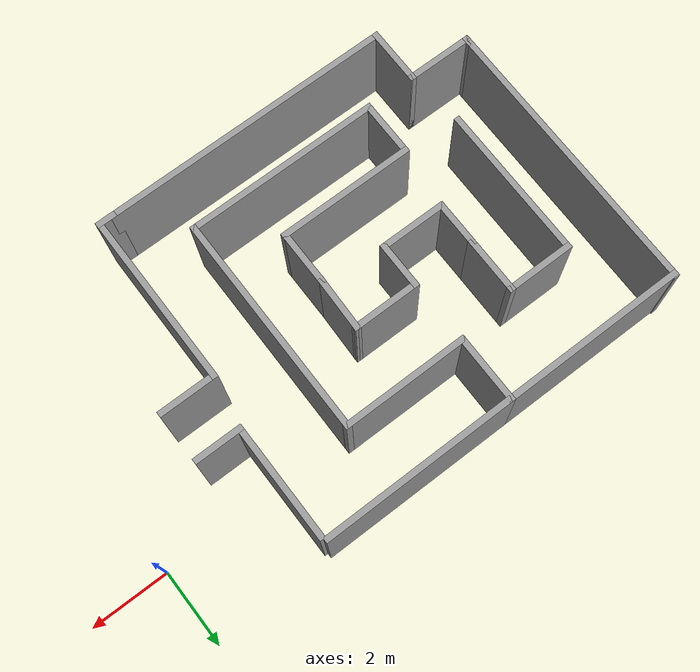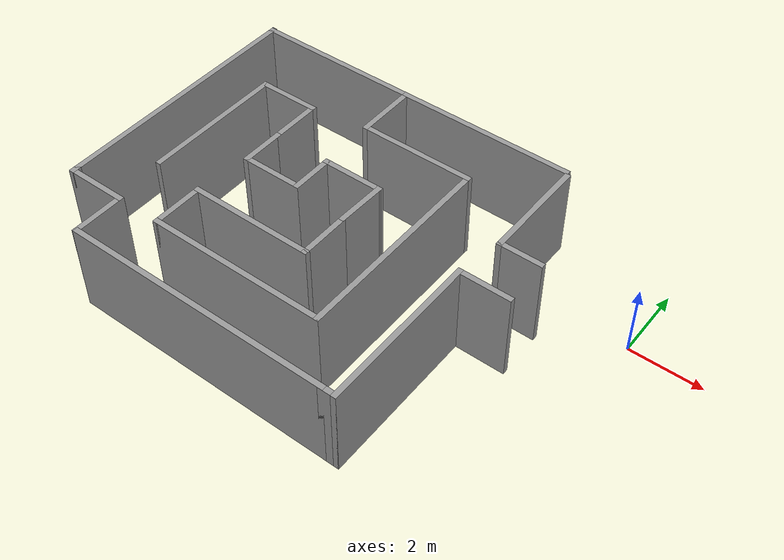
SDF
<?xml version='1.0'?>
<sdf version='1.7'>
  <model name='Hard_map.world'>
    <pose>-6.34769 -2.39173 0 0 -0 0</pose>
    <link name='Wall_20'>
      <collision name='Wall_20_Collision'>
        <geometry>
          <box>
            <size>1.75 0.15 2.5</size>
          </box>
        </geometry>
        <pose>0 0 1.25 0 -0 0</pose>
      </collision>
      <visual name='Wall_20_Visual'>
        <pose>0 0 1.25 0 -0 0</pose>
        <geometry>
          <box>
            <size>1.75 0.15 2.5</size>
          </box>
        </geometry>
        <material>
          <script>
            <uri>file://media/materials/scripts/gazebo.material</uri>
            <name>Gazebo/Grey</name>
          </script>
          <ambient>1 1 1 1</ambient>
        </material>
        <meta>
          <layer>0</layer>
        </meta>
      </visual>
      <pose>-0.837705 1.03457 0 0 -0 3.14159</pose>
    </link>
    <link name='Wall_21'>
      <collision name='Wall_21_Collision'>
        <geometry>
          <box>
            <size>1.25 0.15 2.5</size>
          </box>
        </geometry>
        <pose>0 0 1.25 0 -0 0</pose>
      </collision>
      <visual name='Wall_21_Visual'>
        <pose>0 0 1.25 0 -0 0</pose>
        <geometry>
          <box>
            <size>1.25 0.15 2.5</size>
          </box>
        </geometry>
        <material>
          <script>
            <uri>file://media/materials/scripts/gazebo.material</uri>
            <name>Gazebo/Grey</name>
          </script>
          <ambient>1 1 1 1</ambient>
        </material>
        <meta>
          <layer>0</layer>
        </meta>
      </visual>
      <pose>-1.6377 0.484568 0 0 -0 -1.5708</pose>
    </link>
    <link name='Wall_22'>
      <collision name='Wall_22_Collision'>
        <geometry>
          <box>
            <size>1.75 0.15 2.5</size>
          </box>
        </geometry>
        <pose>0 0 1.25 0 -0 0</pose>
      </collision>
      <visual name='Wall_22_Visual'>
        <pose>0 0 1.25 0 -0 0</pose>
        <geometry>
          <box>
            <size>1.75 0.15 2.5</size>
          </box>
        </geometry>
        <material>
          <script>
            <uri>file://media/materials/scripts/gazebo.material</uri>
            <name>Gazebo/Grey</name>
          </script>
          <ambient>1 1 1 1</ambient>
        </material>
        <meta>
          <layer>0</layer>
        </meta>
      </visual>
      <pose>-2.43771 -0.065432 0 0 -0 3.14159</pose>
    </link>
    <link name='Wall_23'>
      <collision name='Wall_23_Collision'>
        <geometry>
          <box>
            <size>1.25 0.15 2.5</size>
          </box>
        </geometry>
        <pose>0 0 1.25 0 -0 0</pose>
      </collision>
      <visual name='Wall_23_Visual'>
        <pose>0 0 1.25 0 -0 0</pose>
        <geometry>
          <box>
            <size>1.25 0.15 2.5</size>
          </box>
        </geometry>
        <material>
          <script>
            <uri>file://media/materials/scripts/gazebo.material</uri>
            <name>Gazebo/Grey</name>
          </script>
          <ambient>1 1 1 1</ambient>
        </material>
        <meta>
          <layer>0</layer>
        </meta>
      </visual>
      <pose>-3.23771 0.484568 0 0 -0 1.5708</pose>
    </link>
    <link name='Wall_24'>
      <collision name='Wall_24_Collision'>
        <geometry>
          <box>
            <size>1.5 0.15 2.5</size>
          </box>
        </geometry>
        <pose>0 0 1.25 0 -0 0</pose>
      </collision>
      <visual name='Wall_24_Visual'>
        <pose>0 0 1.25 0 -0 0</pose>
        <geometry>
          <box>
            <size>1.5 0.15 2.5</size>
          </box>
        </geometry>
        <material>
          <script>
            <uri>file://media/materials/scripts/gazebo.material</uri>
            <name>Gazebo/Grey</name>
          </script>
          <ambient>1 1 1 1</ambient>
        </material>
        <meta>
          <layer>0</layer>
        </meta>
      </visual>
      <pose>-3.23771 1.70957 0 0 -0 1.5708</pose>
    </link>
    <link name='Wall_25'>
      <collision name='Wall_25_Collision'>
        <geometry>
          <box>
            <size>1.75 0.15 2.5</size>
          </box>
        </geometry>
        <pose>0 0 1.25 0 -0 0</pose>
      </collision>
      <visual name='Wall_25_Visual'>
        <pose>0 0 1.25 0 -0 0</pose>
        <geometry>
          <box>
            <size>1.75 0.15 2.5</size>
          </box>
        </geometry>
        <material>
          <script>
            <uri>file://media/materials/scripts/gazebo.material</uri>
            <name>Gazebo/Grey</name>
          </script>
          <ambient>1 1 1 1</ambient>
        </material>
        <meta>
          <layer>0</layer>
        </meta>
      </visual>
      <pose>-4.0377 2.38457 0 0 -0 3.14159</pose>
    </link>
    <link name='Wall_26'>
      <collision name='Wall_26_Collision'>
        <geometry>
          <box>
            <size>4 0.15 2.5</size>
          </box>
        </geometry>
        <pose>0 0 1.25 0 -0 0</pose>
      </collision>
      <visual name='Wall_26_Visual'>
        <pose>0 0 1.25 0 -0 0</pose>
        <geometry>
          <box>
            <size>4 0.15 2.5</size>
          </box>
        </geometry>
        <material>
          <script>
            <uri>file://media/materials/scripts/gazebo.material</uri>
            <name>Gazebo/Grey</name>
          </script>
          <ambient>1 1 1 1</ambient>
        </material>
        <meta>
          <layer>0</layer>
        </meta>
      </visual>
      <pose>-4.8377 0.459568 0 0 -0 -1.5708</pose>
    </link>
    <link name='Wall_28'>
      <collision name='Wall_28_Collision'>
        <geometry>
          <box>
            <size>1.5 0.15 2.5</size>
          </box>
        </geometry>
        <pose>0 0 1.25 0 -0 0</pose>
      </collision>
      <visual name='Wall_28_Visual'>
        <pose>0 0 1.25 0 -0 0</pose>
        <geometry>
          <box>
            <size>1.5 0.15 2.5</size>
          </box>
        </geometry>
        <material>
          <script>
            <uri>file://media/materials/scripts/gazebo.material</uri>
            <name>Gazebo/Grey</name>
          </script>
          <ambient>1 1 1 1</ambient>
        </material>
        <meta>
          <layer>0</layer>
        </meta>
      </visual>
      <pose>-0.072685 -0.934696 0 0 -0 -1.5708</pose>
    </link>
    <link name='Wall_29'>
      <collision name='Wall_29_Collision'>
        <geometry>
          <box>
            <size>3.5 0.15 2.5</size>
          </box>
        </geometry>
        <pose>0 0 1.25 0 -0 0</pose>
      </collision>
      <visual name='Wall_29_Visual'>
        <pose>0 0 1.25 0 -0 0</pose>
        <geometry>
          <box>
            <size>3.5 0.15 2.5</size>
          </box>
        </geometry>
        <material>
          <script>
            <uri>file://media/materials/scripts/gazebo.material</uri>
            <name>Gazebo/Grey</name>
          </script>
          <ambient>1 1 1 1</ambient>
        </material>
        <meta>
          <layer>0</layer>
        </meta>
      </visual>
      <pose>-1.74768 -1.6097 0 0 -0 3.14159</pose>
    </link>
    <link name='Wall_30'>
      <collision name='Wall_30_Collision'>
        <geometry>
          <box>
            <size>1.5 0.15 2.5</size>
          </box>
        </geometry>
        <pose>0 0 1.25 0 -0 0</pose>
      </collision>
      <visual name='Wall_30_Visual'>
        <pose>0 0 1.25 0 -0 0</pose>
        <geometry>
          <box>
            <size>1.5 0.15 2.5</size>
          </box>
        </geometry>
        <material>
          <script>
            <uri>file://media/materials/scripts/gazebo.material</uri>
            <name>Gazebo/Grey</name>
          </script>
          <ambient>1 1 1 1</ambient>
        </material>
        <meta>
          <layer>0</layer>
        </meta>
      </visual>
      <pose>-3.42268 -2.2847 0 0 -0 -1.5708</pose>
    </link>
    <link name='Wall_31'>
      <collision name='Wall_31_Collision'>
        <geometry>
          <box>
            <size>5 0.15 2.5</size>
          </box>
        </geometry>
        <pose>0 0 1.25 0 -0 0</pose>
      </collision>
      <visual name='Wall_31_Visual'>
        <pose>0 0 1.25 0 -0 0</pose>
        <geometry>
          <box>
            <size>5 0.15 2.5</size>
          </box>
        </geometry>
        <material>
          <script>
            <uri>file://media/materials/scripts/gazebo.material</uri>
            <name>Gazebo/Grey</name>
          </script>
          <ambient>1 1 1 1</ambient>
        </material>
        <meta>
          <layer>0</layer>
        </meta>
      </visual>
      <pose>-0.997685 -2.9597 0 0 -0 0</pose>
    </link>
    <link name='Wall_32'>
      <collision name='Wall_32_Collision'>
        <geometry>
          <box>
            <size>5.75 0.15 2.5</size>
          </box>
        </geometry>
        <pose>0 0 1.25 0 -0 0</pose>
      </collision>
      <visual name='Wall_32_Visual'>
        <pose>0 0 1.25 0 -0 0</pose>
        <geometry>
          <box>
            <size>5.75 0.15 2.5</size>
          </box>
        </geometry>
        <material>
          <script>
            <uri>file://media/materials/scripts/gazebo.material</uri>
            <name>Gazebo/Grey</name>
          </script>
          <ambient>1 1 1 1</ambient>
        </material>
        <meta>
          <layer>0</layer>
        </meta>
      </visual>
      <pose>1.42731 -0.159696 0 0 -0 1.5708</pose>
    </link>
    <link name='Wall_33'>
      <collision name='Wall_33_Collision'>
        <geometry>
          <box>
            <size>3.25 0.15 2.5</size>
          </box>
        </geometry>
        <pose>0 0 1.25 0 -0 0</pose>
      </collision>
      <visual name='Wall_33_Visual'>
        <pose>0 0 1.25 0 -0 0</pose>
        <geometry>
          <box>
            <size>3.25 0.15 2.5</size>
          </box>
        </geometry>
        <material>
          <script>
            <uri>file://media/materials/scripts/gazebo.material</uri>
            <name>Gazebo/Grey</name>
          </script>
          <ambient>1 1 1 1</ambient>
        </material>
        <meta>
          <layer>0</layer>
        </meta>
      </visual>
      <pose>-0.122685 2.6403 0 0 -0 3.14159</pose>
    </link>
    <link name='Wall_34'>
      <collision name='Wall_34_Collision'>
        <geometry>
          <box>
            <size>1.79626 0.15 2.5</size>
          </box>
        </geometry>
        <pose>0 0 1.25 0 -0 0</pose>
      </collision>
      <visual name='Wall_34_Visual'>
        <pose>0 0 1.25 0 -0 0</pose>
        <geometry>
          <box>
            <size>1.79626 0.15 2.5</size>
          </box>
        </geometry>
        <material>
          <script>
            <uri>file://media/materials/scripts/gazebo.material</uri>
            <name>Gazebo/Grey</name>
          </script>
          <ambient>1 1 1 1</ambient>
        </material>
        <meta>
          <layer>0</layer>
        </meta>
      </visual>
      <pose>-1.67268 3.46343 0 0 -0 1.5708</pose>
    </link>
    <link name='Wall_35'>
      <collision name='Wall_35_Collision'>
        <geometry>
          <box>
            <size>4.75 0.15 2.5</size>
          </box>
        </geometry>
        <pose>0 0 1.25 0 -0 0</pose>
      </collision>
      <visual name='Wall_35_Visual'>
        <pose>0 0 1.25 0 -0 0</pose>
        <geometry>
          <box>
            <size>4.75 0.15 2.5</size>
          </box>
        </geometry>
        <material>
          <script>
            <uri>file://media/materials/scripts/gazebo.material</uri>
            <name>Gazebo/Grey</name>
          </script>
          <ambient>1 1 1 1</ambient>
        </material>
        <meta>
          <layer>0</layer>
        </meta>
      </visual>
      <pose>-3.97268 4.28657 0 0 -0 3.14159</pose>
    </link>
    <link name='Wall_36'>
      <collision name='Wall_36_Collision'>
        <geometry>
          <box>
            <size>7.31939 0.15 2.5</size>
          </box>
        </geometry>
        <pose>0 0 1.25 0 -0 0</pose>
      </collision>
      <visual name='Wall_36_Visual'>
        <pose>0 0 1.25 0 -0 0</pose>
        <geometry>
          <box>
            <size>7.31939 0.15 2.5</size>
          </box>
        </geometry>
        <material>
          <script>
            <uri>file://media/materials/scripts/gazebo.material</uri>
            <name>Gazebo/Grey</name>
          </script>
          <ambient>1 1 1 1</ambient>
        </material>
        <meta>
          <layer>0</layer>
        </meta>
      </visual>
      <pose>-6.27269 0.725 0 0 -0 -1.5708</pose>
    </link>
    <link name='Wall_37'>
      <collision name='Wall_37_Collision'>
        <geometry>
          <box>
            <size>0.25 0.15 2.5</size>
          </box>
        </geometry>
        <pose>0 0 1.25 0 -0 0</pose>
      </collision>
      <visual name='Wall_37_Visual'>
        <pose>0 0 1.25 0 -0 0</pose>
        <geometry>
          <box>
            <size>0.25 0.15 2.5</size>
          </box>
        </geometry>
        <material>
          <script>
            <uri>file://media/materials/scripts/gazebo.material</uri>
            <name>Gazebo/Grey</name>
          </script>
          <ambient>1 1 1 1</ambient>
        </material>
        <meta>
          <layer>0</layer>
        </meta>
      </visual>
      <pose>-6.27269 -2.9097 0 0 -0 -1.5708</pose>
    </link>
    <link name='Wall_38'>
      <collision name='Wall_38_Collision'>
        <geometry>
          <box>
            <size>1.75 0.15 2.5</size>
          </box>
        </geometry>
        <pose>0 0 1.25 0 -0 0</pose>
      </collision>
      <visual name='Wall_38_Visual'>
        <pose>0 0 1.25 0 -0 0</pose>
        <geometry>
          <box>
            <size>1.75 0.15 2.5</size>
          </box>
        </geometry>
        <material>
          <script>
            <uri>file://media/materials/scripts/gazebo.material</uri>
            <name>Gazebo/Grey</name>
          </script>
          <ambient>1 1 1 1</ambient>
        </material>
        <meta>
          <layer>0</layer>
        </meta>
      </visual>
      <pose>-5.47269 -2.9597 0 0 -0 0</pose>
    </link>
    <link name='Wall_39'>
      <collision name='Wall_39_Collision'>
        <geometry>
          <box>
            <size>1.5 0.15 2.5</size>
          </box>
        </geometry>
        <pose>0 0 1.25 0 -0 0</pose>
      </collision>
      <visual name='Wall_39_Visual'>
        <pose>0 0 1.25 0 -0 0</pose>
        <geometry>
          <box>
            <size>1.5 0.15 2.5</size>
          </box>
        </geometry>
        <material>
          <script>
            <uri>file://media/materials/scripts/gazebo.material</uri>
            <name>Gazebo/Grey</name>
          </script>
          <ambient>1 1 1 1</ambient>
        </material>
        <meta>
          <layer>0</layer>
        </meta>
      </visual>
      <pose>-4.67269 -3.6347 0 0 -0 -1.5708</pose>
    </link>
    <link name='Wall_40'>
      <collision name='Wall_40_Collision'>
        <geometry>
          <box>
            <size>7.5 0.15 2.5</size>
          </box>
        </geometry>
        <pose>0 0 1.25 0 -0 0</pose>
      </collision>
      <visual name='Wall_40_Visual'>
        <pose>0 0 1.25 0 -0 0</pose>
        <geometry>
          <box>
            <size>7.5 0.15 2.5</size>
          </box>
        </geometry>
        <material>
          <script>
            <uri>file://media/materials/scripts/gazebo.material</uri>
            <name>Gazebo/Grey</name>
          </script>
          <ambient>1 1 1 1</ambient>
        </material>
        <meta>
          <layer>0</layer>
        </meta>
      </visual>
      <pose>-0.997685 -4.3097 0 0 -0 0</pose>
    </link>
    <link name='Wall_41'>
      <collision name='Wall_41_Collision'>
        <geometry>
          <box>
            <size>0.5 0.15 2.5</size>
          </box>
        </geometry>
        <pose>0 0 1.25 0 -0 0</pose>
      </collision>
      <visual name='Wall_41_Visual'>
        <pose>0 0 1.25 0 -0 0</pose>
        <geometry>
          <box>
            <size>0.5 0.15 2.5</size>
          </box>
        </geometry>
        <material>
          <script>
            <uri>file://media/materials/scripts/gazebo.material</uri>
            <name>Gazebo/Grey</name>
          </script>
          <ambient>1 1 1 1</ambient>
        </material>
        <meta>
          <layer>0</layer>
        </meta>
      </visual>
      <pose>2.85231 -4.3097 0 0 -0 0</pose>
    </link>
    <link name='Wall_42'>
      <collision name='Wall_42_Collision'>
        <geometry>
          <box>
            <size>4.5 0.15 2.5</size>
          </box>
        </geometry>
        <pose>0 0 1.25 0 -0 0</pose>
      </collision>
      <visual name='Wall_42_Visual'>
        <pose>0 0 1.25 0 -0 0</pose>
        <geometry>
          <box>
            <size>4.5 0.15 2.5</size>
          </box>
        </geometry>
        <material>
          <script>
            <uri>file://media/materials/scripts/gazebo.material</uri>
            <name>Gazebo/Grey</name>
          </script>
          <ambient>1 1 1 1</ambient>
        </material>
        <meta>
          <layer>0</layer>
        </meta>
      </visual>
      <pose>3.02732 -2.1347 0 0 -0 1.5708</pose>
    </link>
    <link name='Wall_43'>
      <collision name='Wall_43_Collision'>
        <geometry>
          <box>
            <size>1.5 0.15 2.5</size>
          </box>
        </geometry>
        <pose>0 0 1.25 0 -0 0</pose>
      </collision>
      <visual name='Wall_43_Visual'>
        <pose>0 0 1.25 0 -0 0</pose>
        <geometry>
          <box>
            <size>1.5 0.15 2.5</size>
          </box>
        </geometry>
        <material>
          <script>
            <uri>file://media/materials/scripts/gazebo.material</uri>
            <name>Gazebo/Grey</name>
          </script>
          <ambient>1 1 1 1</ambient>
        </material>
        <meta>
          <layer>0</layer>
        </meta>
      </visual>
      <pose>3.70232 0.040304 0 0 -0 0</pose>
    </link>
    <link name='Wall_45'>
      <collision name='Wall_45_Collision'>
        <geometry>
          <box>
            <size>1.25 0.15 2.5</size>
          </box>
        </geometry>
        <pose>0 0 1.25 0 -0 0</pose>
      </collision>
      <visual name='Wall_45_Visual'>
        <pose>0 0 1.25 0 -0 0</pose>
        <geometry>
          <box>
            <size>1.25 0.15 2.5</size>
          </box>
        </geometry>
        <material>
          <script>
            <uri>file://media/materials/scripts/gazebo.material</uri>
            <name>Gazebo/Grey</name>
          </script>
          <ambient>1 1 1 1</ambient>
        </material>
        <meta>
          <layer>0</layer>
        </meta>
      </visual>
      <pose>3.81118 1.31573 0 0 -0 3.14159</pose>
    </link>
    <link name='Wall_48'>
      <collision name='Wall_48_Collision'>
        <geometry>
          <box>
            <size>3 0.15 2.5</size>
          </box>
        </geometry>
        <pose>0 0 1.25 0 -0 0</pose>
      </collision>
      <visual name='Wall_48_Visual'>
        <pose>0 0 1.25 0 -0 0</pose>
        <geometry>
          <box>
            <size>3 0.15 2.5</size>
          </box>
        </geometry>
        <material>
          <script>
            <uri>file://media/materials/scripts/gazebo.material</uri>
            <name>Gazebo/Grey</name>
          </script>
          <ambient>1 1 1 1</ambient>
        </material>
        <meta>
          <layer>0</layer>
        </meta>
      </visual>
      <pose>3.26118 2.74073 0 0 -0 1.5708</pose>
    </link>
    <link name='Wall_51'>
      <collision name='Wall_51_Collision'>
        <geometry>
          <box>
            <size>5 0.15 2.5</size>
          </box>
        </geometry>
        <pose>0 0 1.25 0 -0 0</pose>
      </collision>
      <visual name='Wall_51_Visual'>
        <pose>0 0 1.25 0 -0 0</pose>
        <geometry>
          <box>
            <size>5 0.15 2.5</size>
          </box>
        </geometry>
        <material>
          <script>
            <uri>file://media/materials/scripts/gazebo.material</uri>
            <name>Gazebo/Grey</name>
          </script>
          <ambient>1 1 1 1</ambient>
        </material>
        <meta>
          <layer>0</layer>
        </meta>
      </visual>
      <pose>0.752315 4.28657 0 0 -0 0</pose>
    </link>
    <link name='Wall_53'>
      <collision name='Wall_53_Collision'>
        <geometry>
          <box>
            <size>1.44474 0.15 2.5</size>
          </box>
        </geometry>
        <pose>0 0 1.25 0 -0 0</pose>
      </collision>
      <visual name='Wall_53_Visual'>
        <pose>0 0 1.25 0 -0 0</pose>
        <geometry>
          <box>
            <size>1.44474 0.15 2.5</size>
          </box>
        </geometry>
        <material>
          <script>
            <uri>file://media/materials/scripts/gazebo.material</uri>
            <name>Gazebo/Grey</name>
          </script>
          <ambient>1 1 1 1</ambient>
        </material>
        <meta>
          <layer>0</layer>
        </meta>
      </visual>
      <pose>-0.055195 0.387436 0 0 -0 1.54378</pose>
    </link>
    <static>1</static>
  </model>
</sdf>
